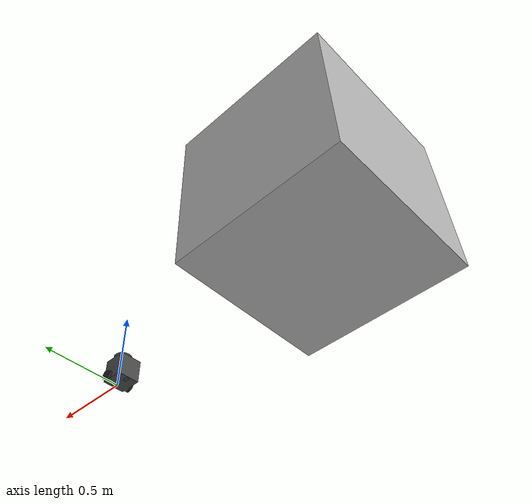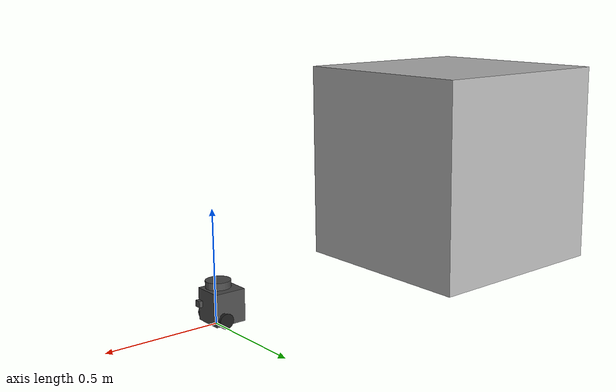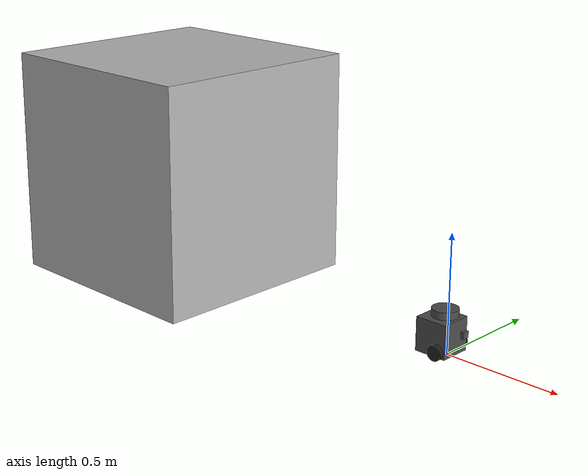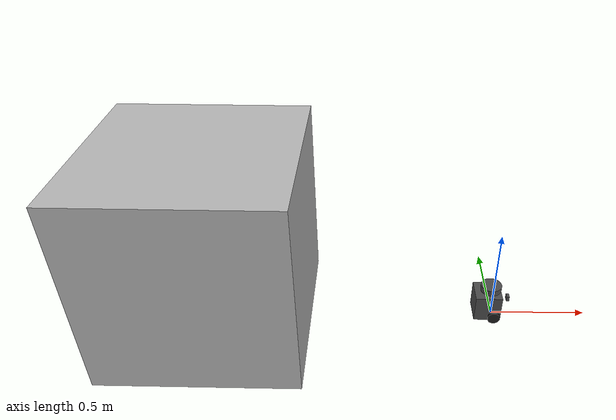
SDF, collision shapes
<?xml version='1.0'?>
<sdf version='1.7'>
  <model name='turtlebot3_rpi_camera3'>
    <link name='base_footprint'>
      <inertial>
        <pose>-0.016218 0 0.012342 0 -0 0</pose>
        <mass>8.37135</mass>
        <inertia>
          <ixx>0.0264521</ixx>
          <ixy>-0.000122941</ixy>
          <ixz>0.000658843</ixz>
          <iyy>0.0255501</iyy>
          <iyz>-5.01209e-05</iyz>
          <izz>0.0210941</izz>
        </inertia>
      </inertial>
      <sensor name='Pi Camera' type='camera'>
        <always_on>1</always_on>
        <visualize>0</visualize>
        <camera>
          <horizontal_fov>1.0856</horizontal_fov>
          <image>
            <width>640</width>
            <height>480</height>
            <format>R8G8B8</format>
          </image>
          <clip>
            <near>0.03</near>
            <far>100</far>
          </clip>
        </camera>
        <plugin name='camera_controller' filename='libgazebo_ros_camera.so'>
          <alwaysOn>1</alwaysOn>
          <updateRate>30.0</updateRate>
          <cameraName>camera</cameraName>
          <frameName>camera_rgb_optical_frame</frameName>
          <imageTopicName>rgb/image_raw</imageTopicName>
          <cameraInfoTopicName>rgb/camera_info</cameraInfoTopicName>
          <hackBaseline>0.07</hackBaseline>
          <distortionK1>0.0</distortionK1>
          <distortionK2>0.0</distortionK2>
          <distortionK3>0.0</distortionK3>
          <distortionT1>0.0</distortionT1>
          <distortionT2>0.0</distortionT2>
          <robotNamespace>/robotA/</robotNamespace>
        </plugin>
        <pose>0.076 0 0.103 0 -0 0</pose>
      </sensor>
      <sensor name='imu' type='imu'>
        <always_on>1</always_on>
        <visualize>0</visualize>
        <pose>-0.032 0 0.078 0 -0 0</pose>
        <imu/>
      </sensor>
      <sensor name='lds_lfcd_sensor' type='ray'>
        <visualize>0</visualize>
        <update_rate>5</update_rate>
        <ray>
          <scan>
            <horizontal>
              <samples>360</samples>
              <resolution>1</resolution>
              <min_angle>0</min_angle>
              <max_angle>6.28319</max_angle>
            </horizontal>
            <vertical>
              <samples>1</samples>
              <min_angle>0</min_angle>
              <max_angle>0</max_angle>
            </vertical>
          </scan>
          <range>
            <min>0.12</min>
            <max>3.5</max>
            <resolution>0.015</resolution>
          </range>
          <noise>
            <type>gaussian</type>
            <mean>0</mean>
            <stddev>0.01</stddev>
          </noise>
        </ray>
        <plugin name='gazebo_ros_lds_lfcd_controller' filename='libgazebo_ros_laser.so'>
          <topicName>scan</topicName>
          <frameName>base_scan</frameName>
          <robotNamespace>/robotA/</robotNamespace>
        </plugin>
        <pose>-0.032 0 0.182 0 -0 0</pose>
      </sensor>
      <self_collide>0</self_collide>
      <enable_wind>0</enable_wind>
      <kinematic>0</kinematic>
      <pose>0 0 0 0 -0 0</pose>
      <visual name='base_footprint_fixed_joint_lump__base_link_visual'>
        <pose>-0.032 0 0.01 0 -0 0</pose>
        <geometry>
          <mesh>
            <scale>0.001 0.001 0.001</scale>
            <uri>/opt/ros/noetic/share/turtlebot3_description/meshes/bases/burger_base.stl</uri>
          </mesh>
        </geometry>
        <material>
          <script>
            <name>Gazebo/DarkGrey</name>
            <uri>file://media/materials/scripts/gazebo.material</uri>
          </script>
          <shader type='pixel'/>
          <emissive>0 0 0 1</emissive>
        </material>
        <transparency>0</transparency>
        <cast_shadows>1</cast_shadows>
      </visual>
      <visual name='base_footprint_fixed_joint_lump__base_scan_visual_1'>
        <pose>-0.032 0 0.182 0 -0 0</pose>
        <geometry>
          <mesh>
            <scale>0.001 0.001 0.001</scale>
            <uri>/opt/ros/noetic/share/turtlebot3_description/meshes/sensors/lds.stl</uri>
          </mesh>
        </geometry>
        <material>
          <script>
            <name>Gazebo/FlatBlack</name>
            <uri>file://media/materials/scripts/gazebo.material</uri>
          </script>
          <shader type='pixel'/>
          <emissive>0 0 0 1</emissive>
        </material>
        <transparency>0</transparency>
        <cast_shadows>1</cast_shadows>
      </visual>
      <collision name='base_footprint_fixed_joint_lump__base_link_collision'>
        <laser_retro>0</laser_retro>
        <max_contacts>10</max_contacts>
        <pose>-0.032 0 0.08 0 -0 0</pose>
        <geometry>
          <box>
            <size>0.14 0.14 0.143</size>
          </box>
        </geometry>
        <surface>
          <friction>
            <ode>
              <mu>1</mu>
              <mu2>1</mu2>
              <fdir1>0 0 0</fdir1>
              <slip1>0</slip1>
              <slip2>0</slip2>
            </ode>
            <torsional>
              <coefficient>1</coefficient>
              <patch_radius>0</patch_radius>
              <surface_radius>0</surface_radius>
              <use_patch_radius>1</use_patch_radius>
              <ode>
                <slip>0</slip>
              </ode>
            </torsional>
          </friction>
          <bounce>
            <restitution_coefficient>0</restitution_coefficient>
            <threshold>1e+06</threshold>
          </bounce>
          <contact>
            <collide_without_contact>0</collide_without_contact>
            <collide_without_contact_bitmask>1</collide_without_contact_bitmask>
            <collide_bitmask>1</collide_bitmask>
            <ode>
              <soft_cfm>0</soft_cfm>
              <soft_erp>0.2</soft_erp>
              <kp>1e+13</kp>
              <kd>1</kd>
              <max_vel>0.01</max_vel>
              <min_depth>0</min_depth>
            </ode>
            <bullet>
              <split_impulse>1</split_impulse>
              <split_impulse_penetration_threshold>-0.01</split_impulse_penetration_threshold>
              <soft_cfm>0</soft_cfm>
              <soft_erp>0.2</soft_erp>
              <kp>1e+13</kp>
              <kd>1</kd>
            </bullet>
          </contact>
        </surface>
      </collision>
      <collision name='base_footprint_fixed_joint_lump__camera_link_collision_1'>
        <laser_retro>0</laser_retro>
        <max_contacts>10</max_contacts>
        <pose>0.078 0 0.107 0 -0 0</pose>
        <geometry>
          <box>
            <size>0.015 0.03 0.027</size>
          </box>
        </geometry>
        <surface>
          <friction>
            <ode>
              <mu>1</mu>
              <mu2>1</mu2>
              <fdir1>0 0 0</fdir1>
              <slip1>0</slip1>
              <slip2>0</slip2>
            </ode>
            <torsional>
              <coefficient>1</coefficient>
              <patch_radius>0</patch_radius>
              <surface_radius>0</surface_radius>
              <use_patch_radius>1</use_patch_radius>
              <ode>
                <slip>0</slip>
              </ode>
            </torsional>
          </friction>
          <bounce>
            <restitution_coefficient>0</restitution_coefficient>
            <threshold>1e+06</threshold>
          </bounce>
          <contact>
            <collide_without_contact>0</collide_without_contact>
            <collide_without_contact_bitmask>1</collide_without_contact_bitmask>
            <collide_bitmask>1</collide_bitmask>
            <ode>
              <soft_cfm>0</soft_cfm>
              <soft_erp>0.2</soft_erp>
              <kp>1e+13</kp>
              <kd>1</kd>
              <max_vel>0.01</max_vel>
              <min_depth>0</min_depth>
            </ode>
            <bullet>
              <split_impulse>1</split_impulse>
              <split_impulse_penetration_threshold>-0.01</split_impulse_penetration_threshold>
              <soft_cfm>0</soft_cfm>
              <soft_erp>0.2</soft_erp>
              <kp>1e+13</kp>
              <kd>1</kd>
            </bullet>
          </contact>
        </surface>
      </collision>
      <collision name='base_footprint_fixed_joint_lump__caster_back_link_collision_2'>
        <laser_retro>0</laser_retro>
        <max_contacts>10</max_contacts>
        <pose>-0.081 0 0.006 -1.5707 0 0</pose>
        <geometry>
          <box>
            <size>0.03 0.009 0.02</size>
          </box>
        </geometry>
        <surface>
          <friction>
            <ode>
              <mu>0.1</mu>
              <mu2>0.1</mu2>
              <fdir1>0 0 0</fdir1>
              <slip1>0</slip1>
              <slip2>0</slip2>
            </ode>
            <torsional>
              <coefficient>1</coefficient>
              <patch_radius>0</patch_radius>
              <surface_radius>0</surface_radius>
              <use_patch_radius>1</use_patch_radius>
              <ode>
                <slip>0</slip>
              </ode>
            </torsional>
          </friction>
          <bounce>
            <restitution_coefficient>0</restitution_coefficient>
            <threshold>1e+06</threshold>
          </bounce>
          <contact>
            <collide_without_contact>0</collide_without_contact>
            <collide_without_contact_bitmask>1</collide_without_contact_bitmask>
            <collide_bitmask>1</collide_bitmask>
            <ode>
              <soft_cfm>0</soft_cfm>
              <soft_erp>0.2</soft_erp>
              <kp>1e+06</kp>
              <kd>100</kd>
              <max_vel>1</max_vel>
              <min_depth>0.001</min_depth>
            </ode>
            <bullet>
              <split_impulse>1</split_impulse>
              <split_impulse_penetration_threshold>-0.01</split_impulse_penetration_threshold>
              <soft_cfm>0</soft_cfm>
              <soft_erp>0.2</soft_erp>
              <kp>1e+06</kp>
              <kd>100</kd>
            </bullet>
          </contact>
        </surface>
      </collision>
      <collision name='base_footprint_fixed_joint_lump__base_scan_collision_3'>
        <laser_retro>0</laser_retro>
        <max_contacts>10</max_contacts>
        <pose>-0.017 0 0.1755 0 -0 0</pose>
        <geometry>
          <cylinder>
            <radius>0.055</radius>
            <length>0.0315</length>
          </cylinder>
        </geometry>
        <surface>
          <friction>
            <ode>
              <mu>1</mu>
              <mu2>1</mu2>
              <fdir1>0 0 0</fdir1>
              <slip1>0</slip1>
              <slip2>0</slip2>
            </ode>
            <torsional>
              <coefficient>1</coefficient>
              <patch_radius>0</patch_radius>
              <surface_radius>0</surface_radius>
              <use_patch_radius>1</use_patch_radius>
              <ode>
                <slip>0</slip>
              </ode>
            </torsional>
          </friction>
          <bounce>
            <restitution_coefficient>0</restitution_coefficient>
            <threshold>1e+06</threshold>
          </bounce>
          <contact>
            <collide_without_contact>0</collide_without_contact>
            <collide_without_contact_bitmask>1</collide_without_contact_bitmask>
            <collide_bitmask>1</collide_bitmask>
            <ode>
              <soft_cfm>0</soft_cfm>
              <soft_erp>0.2</soft_erp>
              <kp>1e+13</kp>
              <kd>1</kd>
              <max_vel>0.01</max_vel>
              <min_depth>0</min_depth>
            </ode>
            <bullet>
              <split_impulse>1</split_impulse>
              <split_impulse_penetration_threshold>-0.01</split_impulse_penetration_threshold>
              <soft_cfm>0</soft_cfm>
              <soft_erp>0.2</soft_erp>
              <kp>1e+13</kp>
              <kd>1</kd>
            </bullet>
          </contact>
        </surface>
      </collision>
    </link>
    <link name='link_0'>
      <inertial>
        <mass>1</mass>
        <inertia>
          <ixx>0.166667</ixx>
          <ixy>0</ixy>
          <ixz>0</ixz>
          <iyy>0.166667</iyy>
          <iyz>0</iyz>
          <izz>0.166667</izz>
        </inertia>
      </inertial>
      <pose>-1.47485 -0.065468 0.50789 3e-06 0.004625 0</pose>
      <visual name='visual'>
        <pose>0 0 0 0 -0 0</pose>
        <geometry>
          <box>
            <size>1 1 1</size>
          </box>
        </geometry>
        <material>
          <lighting>1</lighting>
          <script>
            <uri>model://Apriltag36_11_00000/materials/scripts</uri>
            <uri>model://Apriltag36_11_00000/materials/textures</uri>
            <name>Apriltag36_11_00000</name>
          </script>
          <shader type='pixel'/>
          <emissive>0 0 0 1</emissive>
        </material>
        <transparency>0</transparency>
        <cast_shadows>1</cast_shadows>
      </visual>
      <collision name='collision'>
        <laser_retro>0</laser_retro>
        <max_contacts>10</max_contacts>
        <pose>0 0 0 0 -0 0</pose>
        <geometry>
          <box>
            <size>1 1 1</size>
          </box>
        </geometry>
        <surface>
          <friction>
            <ode>
              <mu>1</mu>
              <mu2>1</mu2>
              <fdir1>0 0 0</fdir1>
              <slip1>0</slip1>
              <slip2>0</slip2>
            </ode>
            <torsional>
              <coefficient>1</coefficient>
              <patch_radius>0</patch_radius>
              <surface_radius>0</surface_radius>
              <use_patch_radius>1</use_patch_radius>
              <ode>
                <slip>0</slip>
              </ode>
            </torsional>
          </friction>
          <bounce>
            <restitution_coefficient>0</restitution_coefficient>
            <threshold>1e+06</threshold>
          </bounce>
          <contact>
            <collide_without_contact>0</collide_without_contact>
            <collide_without_contact_bitmask>1</collide_without_contact_bitmask>
            <collide_bitmask>1</collide_bitmask>
            <ode>
              <soft_cfm>0</soft_cfm>
              <soft_erp>0.2</soft_erp>
              <kp>1e+13</kp>
              <kd>1</kd>
              <max_vel>0.01</max_vel>
              <min_depth>0</min_depth>
            </ode>
            <bullet>
              <split_impulse>1</split_impulse>
              <split_impulse_penetration_threshold>-0.01</split_impulse_penetration_threshold>
              <soft_cfm>0</soft_cfm>
              <soft_erp>0.2</soft_erp>
              <kp>1e+13</kp>
              <kd>1</kd>
            </bullet>
          </contact>
        </surface>
      </collision>
    </link>
    <link name='wheel_left_link'>
      <pose>-0 0.08 0.033 -1.5707 -0 -0</pose>
      <inertial>
        <pose>0 0 0 0 -0 0</pose>
        <mass>2.84989</mass>
        <inertia>
          <ixx>0.00111756</ixx>
          <ixy>-4.23698e-08</ixy>
          <ixz>-5.93817e-07</ixz>
          <iyy>0.00111924</iyy>
          <iyz>-1.44001e-08</iyz>
          <izz>0.00207126</izz>
        </inertia>
      </inertial>
      <self_collide>0</self_collide>
      <enable_wind>0</enable_wind>
      <kinematic>0</kinematic>
      <visual name='wheel_left_link_visual'>
        <pose>0 0 0 1.5707 -0 0</pose>
        <geometry>
          <mesh>
            <scale>0.001 0.001 0.001</scale>
            <uri>/opt/ros/noetic/share/turtlebot3_description/meshes/wheels/left_tire.stl</uri>
          </mesh>
        </geometry>
        <material>
          <script>
            <name>Gazebo/FlatBlack</name>
            <uri>file://media/materials/scripts/gazebo.material</uri>
          </script>
          <shader type='pixel'/>
        </material>
        <transparency>0</transparency>
        <cast_shadows>1</cast_shadows>
      </visual>
      <collision name='wheel_left_link_collision'>
        <laser_retro>0</laser_retro>
        <max_contacts>10</max_contacts>
        <pose>0 0 0 0 -0 0</pose>
        <geometry>
          <cylinder>
            <radius>0.033</radius>
            <length>0.018</length>
          </cylinder>
        </geometry>
        <surface>
          <friction>
            <ode>
              <mu>0.1</mu>
              <mu2>0.1</mu2>
              <fdir1>1 0 0</fdir1>
              <slip1>0</slip1>
              <slip2>0</slip2>
            </ode>
            <torsional>
              <coefficient>1</coefficient>
              <patch_radius>0</patch_radius>
              <surface_radius>0</surface_radius>
              <use_patch_radius>1</use_patch_radius>
              <ode>
                <slip>0</slip>
              </ode>
            </torsional>
          </friction>
          <bounce>
            <restitution_coefficient>0</restitution_coefficient>
            <threshold>1e+06</threshold>
          </bounce>
          <contact>
            <collide_without_contact>0</collide_without_contact>
            <collide_without_contact_bitmask>1</collide_without_contact_bitmask>
            <collide_bitmask>1</collide_bitmask>
            <ode>
              <soft_cfm>0</soft_cfm>
              <soft_erp>0.2</soft_erp>
              <kp>500000</kp>
              <kd>10</kd>
              <max_vel>0.1</max_vel>
              <min_depth>0.001</min_depth>
            </ode>
            <bullet>
              <split_impulse>1</split_impulse>
              <split_impulse_penetration_threshold>-0.01</split_impulse_penetration_threshold>
              <soft_cfm>0</soft_cfm>
              <soft_erp>0.2</soft_erp>
              <kp>500000</kp>
              <kd>10</kd>
            </bullet>
          </contact>
        </surface>
      </collision>
    </link>
    <link name='wheel_right_link'>
      <pose>0 -0.08 0.033 -1.5707 -0 -0</pose>
      <inertial>
        <pose>0 0 0 0 -0 0</pose>
        <mass>2.84989</mass>
        <inertia>
          <ixx>0.00111756</ixx>
          <ixy>-4.23698e-08</ixy>
          <ixz>-5.93817e-07</ixz>
          <iyy>0.00111924</iyy>
          <iyz>-1.44001e-08</iyz>
          <izz>0.00207126</izz>
        </inertia>
      </inertial>
      <self_collide>0</self_collide>
      <enable_wind>0</enable_wind>
      <kinematic>0</kinematic>
      <visual name='wheel_right_link_visual'>
        <pose>0 0 0 1.5707 -0 0</pose>
        <geometry>
          <mesh>
            <scale>0.001 0.001 0.001</scale>
            <uri>/opt/ros/noetic/share/turtlebot3_description/meshes/wheels/right_tire.stl</uri>
          </mesh>
        </geometry>
        <material>
          <script>
            <name>Gazebo/FlatBlack</name>
            <uri>file://media/materials/scripts/gazebo.material</uri>
          </script>
          <shader type='pixel'/>
        </material>
        <transparency>0</transparency>
        <cast_shadows>1</cast_shadows>
      </visual>
      <collision name='wheel_right_link_collision'>
        <laser_retro>0</laser_retro>
        <max_contacts>10</max_contacts>
        <pose>0 0 0 0 -0 0</pose>
        <geometry>
          <cylinder>
            <radius>0.033</radius>
            <length>0.018</length>
          </cylinder>
        </geometry>
        <surface>
          <friction>
            <ode>
              <mu>0.1</mu>
              <mu2>0.1</mu2>
              <fdir1>1 0 0</fdir1>
              <slip1>0</slip1>
              <slip2>0</slip2>
            </ode>
            <torsional>
              <coefficient>1</coefficient>
              <patch_radius>0</patch_radius>
              <surface_radius>0</surface_radius>
              <use_patch_radius>1</use_patch_radius>
              <ode>
                <slip>0</slip>
              </ode>
            </torsional>
          </friction>
          <bounce>
            <restitution_coefficient>0</restitution_coefficient>
            <threshold>1e+06</threshold>
          </bounce>
          <contact>
            <collide_without_contact>0</collide_without_contact>
            <collide_without_contact_bitmask>1</collide_without_contact_bitmask>
            <collide_bitmask>1</collide_bitmask>
            <ode>
              <soft_cfm>0</soft_cfm>
              <soft_erp>0.2</soft_erp>
              <kp>500000</kp>
              <kd>10</kd>
              <max_vel>0.1</max_vel>
              <min_depth>0.001</min_depth>
            </ode>
            <bullet>
              <split_impulse>1</split_impulse>
              <split_impulse_penetration_threshold>-0.01</split_impulse_penetration_threshold>
              <soft_cfm>0</soft_cfm>
              <soft_erp>0.2</soft_erp>
              <kp>500000</kp>
              <kd>10</kd>
            </bullet>
          </contact>
        </surface>
      </collision>
    </link>
    <joint name='base_footprint_JOINT_0' type='revolute'>
      <parent>base_footprint</parent>
      <child>link_0</child>
      <pose>0 0 0 0 -0 0</pose>
      <axis>
        <xyz>1 0 0</xyz>
        <limit>
          <lower>-1.79769e+308</lower>
          <upper>1.79769e+308</upper>
          <effort>-1</effort>
          <velocity>-1</velocity>
        </limit>
        <dynamics>
          <spring_reference>0</spring_reference>
          <spring_stiffness>0</spring_stiffness>
          <damping>0</damping>
        </dynamics>
      </axis>
      <physics>
        <ode>
          <limit>
            <cfm>0</cfm>
            <erp>0.2</erp>
          </limit>
          <suspension>
            <cfm>0</cfm>
            <erp>0.2</erp>
          </suspension>
        </ode>
      </physics>
    </joint>
    <joint name='wheel_left_joint' type='revolute'>
      <parent>base_footprint</parent>
      <child>wheel_left_link</child>
      <pose>0 0 0 0 -0 0</pose>
      <axis>
        <xyz>0 0 1</xyz>
        <limit>
          <lower>-1e+16</lower>
          <upper>1e+16</upper>
          <effort>-1</effort>
          <velocity>-1</velocity>
        </limit>
        <dynamics>
          <spring_reference>0</spring_reference>
          <spring_stiffness>0</spring_stiffness>
          <damping>0</damping>
          <friction>0</friction>
        </dynamics>
      </axis>
      <physics>
        <ode>
          <limit>
            <cfm>0</cfm>
            <erp>0.2</erp>
          </limit>
          <suspension>
            <cfm>0</cfm>
            <erp>0.2</erp>
          </suspension>
        </ode>
      </physics>
    </joint>
    <joint name='wheel_right_joint' type='revolute'>
      <parent>base_footprint</parent>
      <child>wheel_right_link</child>
      <pose>0 0 -0 0 -0 0</pose>
      <axis>
        <xyz>0 0 1</xyz>
        <limit>
          <lower>-1e+16</lower>
          <upper>1e+16</upper>
          <effort>-1</effort>
          <velocity>-1</velocity>
        </limit>
        <dynamics>
          <spring_reference>0</spring_reference>
          <spring_stiffness>0</spring_stiffness>
          <damping>0</damping>
          <friction>0</friction>
        </dynamics>
      </axis>
      <physics>
        <ode>
          <limit>
            <cfm>0</cfm>
            <erp>0.2</erp>
          </limit>
          <suspension>
            <cfm>0</cfm>
            <erp>0.2</erp>
          </suspension>
        </ode>
      </physics>
    </joint>
    <static>0</static>
    <allow_auto_disable>1</allow_auto_disable>
    <plugin name='imu_plugin' filename='libgazebo_ros_imu.so'>
      <alwaysOn>1</alwaysOn>
      <topicName>imu</topicName>
      <serviceName>imu_service</serviceName>
      <gaussianNoise>0.0</gaussianNoise>
      <updateRate>0</updateRate>
      <imu>
        <noise>
          <type>gaussian</type>
          <rate>
            <mean>0.0</mean>
            <stddev>2e-4</stddev>
            <bias_mean>0.0000075</bias_mean>
            <bias_stddev>0.0000008</bias_stddev>
          </rate>
          <accel>
            <mean>0.0</mean>
            <stddev>1.7e-2</stddev>
            <bias_mean>0.1</bias_mean>
            <bias_stddev>0.001</bias_stddev>
          </accel>
        </noise>
      </imu>
      <robotNamespace>/robotA/</robotNamespace>
      <bodyName>base_footprint</bodyName>
      <xyzOffset>0.032 0 -0.078</xyzOffset>
      <rpyOffset>0 -0 0</rpyOffset>
    </plugin>
    <plugin name='turtlebot3_burger_controller' filename='libgazebo_ros_diff_drive.so'>
      <commandTopic>cmd_vel</commandTopic>
      <odometryTopic>odom</odometryTopic>
      <odometryFrame>odom</odometryFrame>
      <odometrySource>world</odometrySource>
      <publishOdomTF>1</publishOdomTF>
      <robotBaseFrame>base_footprint</robotBaseFrame>
      <publishWheelTF>0</publishWheelTF>
      <publishTf>1</publishTf>
      <publishWheelJointState>1</publishWheelJointState>
      <legacyMode>0</legacyMode>
      <updateRate>30</updateRate>
      <leftJoint>wheel_left_joint</leftJoint>
      <rightJoint>wheel_right_joint</rightJoint>
      <wheelSeparation>0.160</wheelSeparation>
      <wheelDiameter>0.066</wheelDiameter>
      <wheelAcceleration>1</wheelAcceleration>
      <wheelTorque>10</wheelTorque>
      <rosDebugLevel>na</rosDebugLevel>
      <robotNamespace>/robotA/</robotNamespace>
    </plugin>
  </model>
</sdf>
